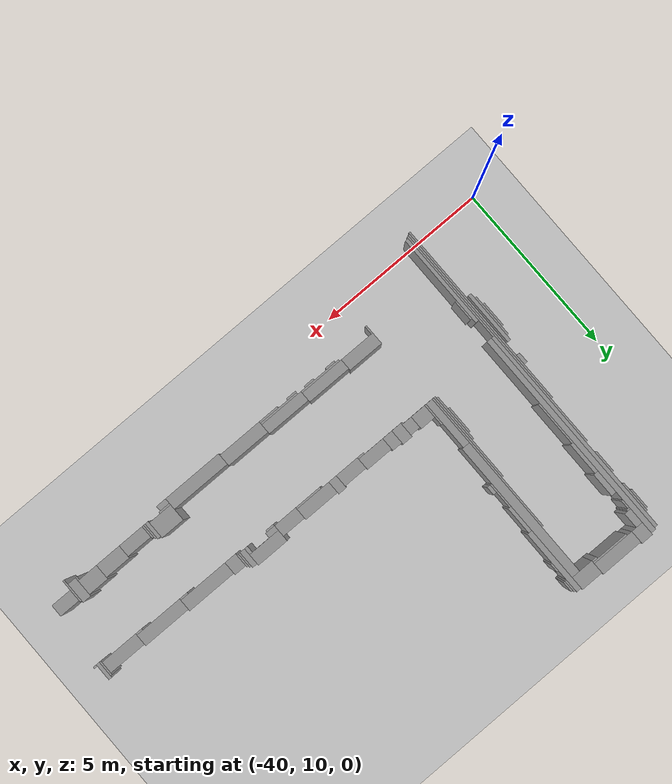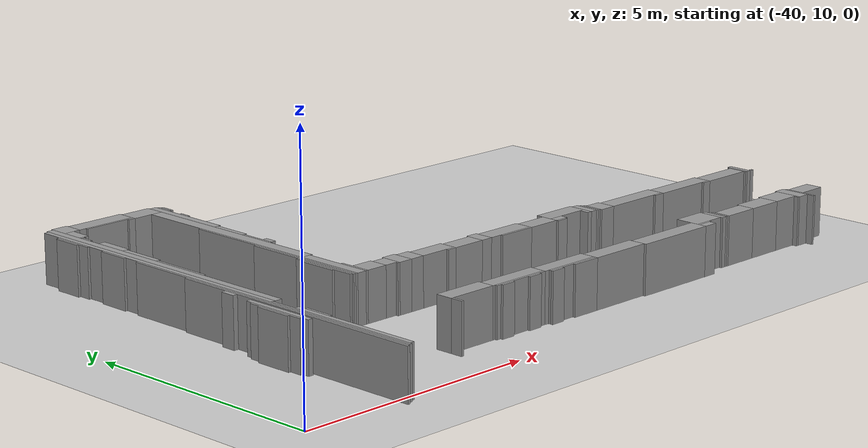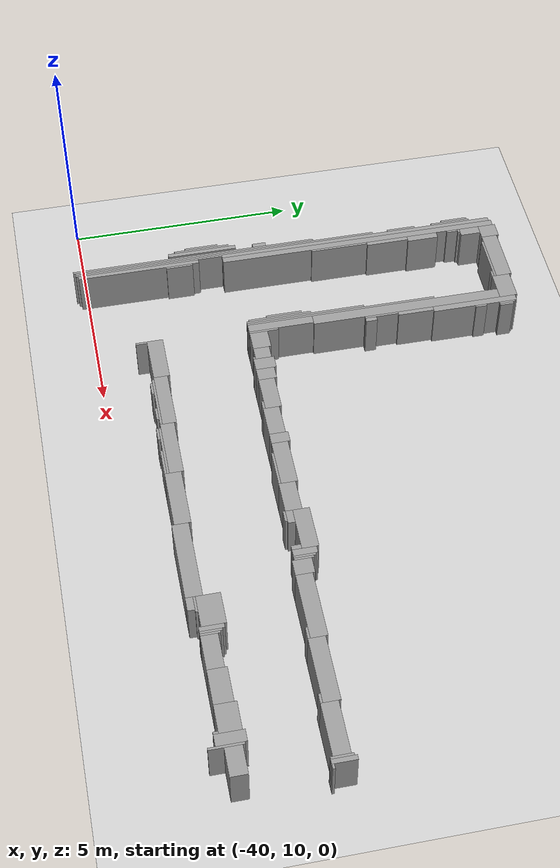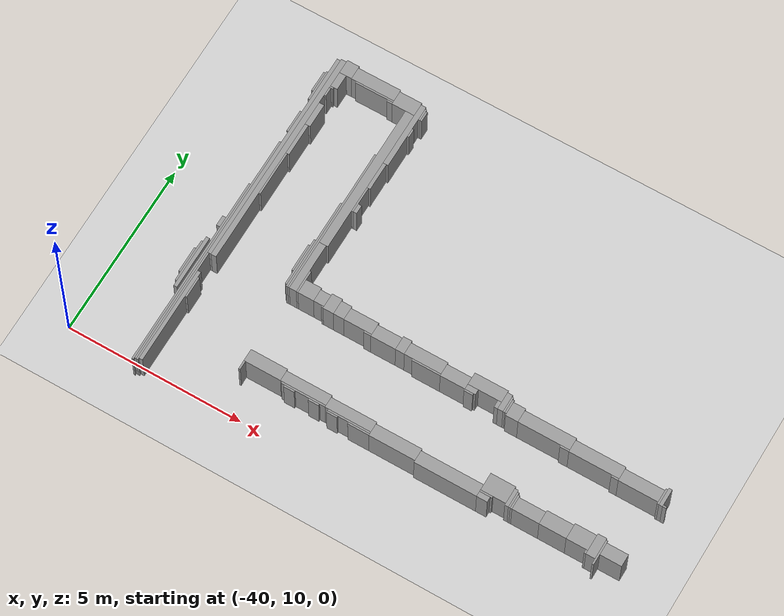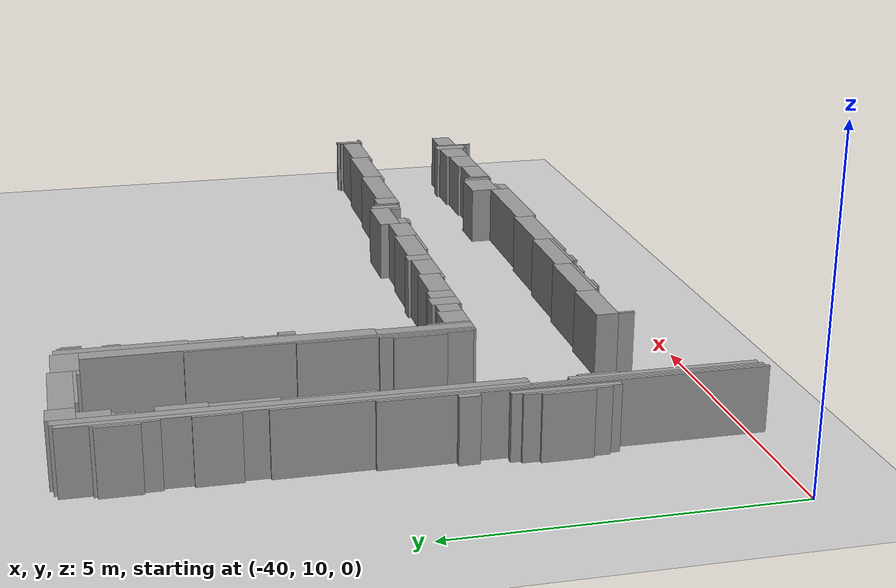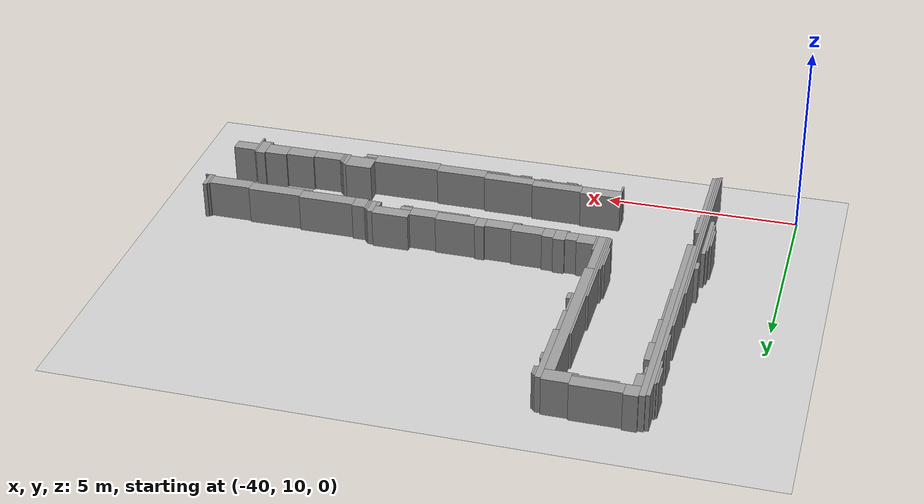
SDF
<sdf version="1.6">
 <world name="default">
  <include><uri>model://ground_plane</uri></include>
  <include><uri>model://sun</uri></include>
  <model name="wall_0">
   <static>1</static>
   <pose>-37.425 19.350000000000005 0.5 0 0 0</pose>
   <link name="link">
    <collision name="collision">
     <geometry><box><size>0.35000000000000003 0.4 1.0</size></box></geometry>
    </collision>
    <visual name="visual">
     <geometry><box><size>0.35000000000000003 0.4 1.0</size></box></geometry>
     <material>
      <script><uri>file://media/materials/scripts/gazebo.material</uri><name>Gazebo/Grey</name></script>
     </material>
    </visual>
   </link>
  </model>
  <model name="wall_1">
   <static>1</static>
   <pose>-37.675 16.325000000000006 0.5 0 0 0</pose>
   <link name="link">
    <collision name="collision">
     <geometry><box><size>0.15000000000000002 6.3500000000000005 1.0</size></box></geometry>
    </collision>
    <visual name="visual">
     <geometry><box><size>0.15000000000000002 6.3500000000000005 1.0</size></box></geometry>
     <material>
      <script><uri>file://media/materials/scripts/gazebo.material</uri><name>Gazebo/Grey</name></script>
     </material>
    </visual>
   </link>
  </model>
  <model name="wall_2">
   <static>1</static>
   <pose>-36.625 19.325000000000006 0.5 0 0 0</pose>
   <link name="link">
    <collision name="collision">
     <geometry><box><size>1.25 0.35000000000000003 1.0</size></box></geometry>
    </collision>
    <visual name="visual">
     <geometry><box><size>1.25 0.35000000000000003 1.0</size></box></geometry>
     <material>
      <script><uri>file://media/materials/scripts/gazebo.material</uri><name>Gazebo/Grey</name></script>
     </material>
    </visual>
   </link>
  </model>
  <model name="wall_3">
   <static>1</static>
   <pose>-37.8 16.3 0.5 0 0 0</pose>
   <link name="link">
    <collision name="collision"><geometry><box><size>0.1 6.300000000000001 1.0</size></box></geometry></collision>
    <visual name="visual">
     <geometry><box><size>0.1 6.300000000000001 1.0</size></box></geometry>
     <material>
      <script><uri>file://media/materials/scripts/gazebo.material</uri><name>Gazebo/Grey</name></script>
     </material>
    </visual>
   </link>
  </model>
  <model name="wall_4">
   <static>1</static>
   <pose>-35.675 19.250000000000004 0.5 0 0 0</pose>
   <link name="link">
    <collision name="collision"><geometry><box><size>0.65 0.4 1.0</size></box></geometry></collision>
    <visual name="visual">
     <geometry><box><size>0.65 0.4 1.0</size></box></geometry>
     <material>
      <script><uri>file://media/materials/scripts/gazebo.material</uri><name>Gazebo/Grey</name></script>
     </material>
    </visual>
   </link>
  </model>
  <model name="wall_5">
   <static>1</static>
   <pose>-35.275 18.450000000000006 0.5 0 0 0</pose>
   <link name="link">
    <collision name="collision">
     <geometry><box><size>0.15000000000000002 1.9000000000000001 1.0</size></box></geometry>
    </collision>
    <visual name="visual">
     <geometry><box><size>0.15000000000000002 1.9000000000000001 1.0</size></box></geometry>
     <material>
      <script><uri>file://media/materials/scripts/gazebo.material</uri><name>Gazebo/Grey</name></script>
     </material>
    </visual>
   </link>
  </model>
  <model name="wall_6">
   <static>1</static>
   <pose>-35.175 19.175 0.5 0 0 0</pose>
   <link name="link">
    <collision name="collision">
     <geometry><box><size>0.05 0.35000000000000003 1.0</size></box></geometry>
    </collision>
    <visual name="visual">
     <geometry><box><size>0.05 0.35000000000000003 1.0</size></box></geometry>
     <material>
      <script><uri>file://media/materials/scripts/gazebo.material</uri><name>Gazebo/Grey</name></script>
     </material>
    </visual>
   </link>
  </model>
  <model name="wall_7">
   <static>1</static>
   <pose>-35.125 19.150000000000002 0.5 0 0 0</pose>
   <link name="link">
    <collision name="collision">
     <geometry><box><size>0.05 0.30000000000000004 1.0</size></box></geometry>
    </collision>
    <visual name="visual">
     <geometry><box><size>0.05 0.30000000000000004 1.0</size></box></geometry>
     <material>
      <script><uri>file://media/materials/scripts/gazebo.material</uri><name>Gazebo/Grey</name></script>
     </material>
    </visual>
   </link>
  </model>
  <model name="wall_8">
   <static>1</static>
   <pose>-37.5 18.925 0.5 0 0 0</pose>
   <link name="link">
    <collision name="collision"><geometry><box><size>0.2 0.45 1.0</size></box></geometry></collision>
    <visual name="visual">
     <geometry><box><size>0.2 0.45 1.0</size></box></geometry>
     <material>
      <script><uri>file://media/materials/scripts/gazebo.material</uri><name>Gazebo/Grey</name></script>
     </material>
    </visual>
   </link>
  </model>
  <model name="wall_9">
   <static>1</static>
   <pose>-36.55 19.125000000000004 0.5 0 0 0</pose>
   <link name="link">
    <collision name="collision"><geometry><box><size>1.1 0.05 1.0</size></box></geometry></collision>
    <visual name="visual">
     <geometry><box><size>1.1 0.05 1.0</size></box></geometry>
     <material>
      <script><uri>file://media/materials/scripts/gazebo.material</uri><name>Gazebo/Grey</name></script>
     </material>
    </visual>
   </link>
  </model>
  <model name="wall_10">
   <static>1</static>
   <pose>-36.074999999999996 19.075000000000006 0.5 0 0 0</pose>
   <link name="link">
    <collision name="collision">
     <geometry><box><size>0.15000000000000002 0.05 1.0</size></box></geometry>
    </collision>
    <visual name="visual">
     <geometry><box><size>0.15000000000000002 0.05 1.0</size></box></geometry>
     <material>
      <script><uri>file://media/materials/scripts/gazebo.material</uri><name>Gazebo/Grey</name></script>
     </material>
    </visual>
   </link>
  </model>
  <model name="wall_11">
   <static>1</static>
   <pose>-35.474999999999994 16.925 0.5 0 0 0</pose>
   <link name="link">
    <collision name="collision"><geometry><box><size>0.25 4.25 1.0</size></box></geometry></collision>
    <visual name="visual">
     <geometry><box><size>0.25 4.25 1.0</size></box></geometry>
     <material>
      <script><uri>file://media/materials/scripts/gazebo.material</uri><name>Gazebo/Grey</name></script>
     </material>
    </visual>
   </link>
  </model>
  <model name="wall_12">
   <static>1</static>
   <pose>-37.875 18.55 0.5 0 0 0</pose>
   <link name="link">
    <collision name="collision"><geometry><box><size>0.05 0.9 1.0</size></box></geometry></collision>
    <visual name="visual">
     <geometry><box><size>0.05 0.9 1.0</size></box></geometry>
     <material>
      <script><uri>file://media/materials/scripts/gazebo.material</uri><name>Gazebo/Grey</name></script>
     </material>
    </visual>
   </link>
  </model>
  <model name="wall_13">
   <static>1</static>
   <pose>-37.925 18.650000000000002 0.5 0 0 0</pose>
   <link name="link">
    <collision name="collision">
     <geometry><box><size>0.05 0.6000000000000001 1.0</size></box></geometry>
    </collision>
    <visual name="visual">
     <geometry><box><size>0.05 0.6000000000000001 1.0</size></box></geometry>
     <material>
      <script><uri>file://media/materials/scripts/gazebo.material</uri><name>Gazebo/Grey</name></script>
     </material>
    </visual>
   </link>
  </model>
  <model name="wall_17">
   <static>1</static>
   <pose>-37.55 18.675 0.5 0 0 0</pose>
   <link name="link">
    <collision name="collision"><geometry><box><size>0.1 0.05 1.0</size></box></geometry></collision>
    <visual name="visual">
     <geometry><box><size>0.1 0.05 1.0</size></box></geometry>
     <material>
      <script><uri>file://media/materials/scripts/gazebo.material</uri><name>Gazebo/Grey</name></script>
     </material>
    </visual>
   </link>
  </model>
  <model name="wall_18">
   <static>1</static>
   <pose>-35.175 18.575000000000006 0.5 0 0 0</pose>
   <link name="link">
    <collision name="collision"><geometry><box><size>0.05 0.25 1.0</size></box></geometry></collision>
    <visual name="visual">
     <geometry><box><size>0.05 0.25 1.0</size></box></geometry>
     <material>
      <script><uri>file://media/materials/scripts/gazebo.material</uri><name>Gazebo/Grey</name></script>
     </material>
    </visual>
   </link>
  </model>
  <model name="wall_21">
   <static>1</static>
   <pose>-37.574999999999996 18.525000000000002 0.5 0 0 0</pose>
   <link name="link">
    <collision name="collision"><geometry><box><size>0.05 0.25 1.0</size></box></geometry></collision>
    <visual name="visual">
     <geometry><box><size>0.05 0.25 1.0</size></box></geometry>
     <material>
      <script><uri>file://media/materials/scripts/gazebo.material</uri><name>Gazebo/Grey</name></script>
     </material>
    </visual>
   </link>
  </model>
  <model name="wall_29">
   <static>1</static>
   <pose>-37.525 17.8 0.5 0 0 0</pose>
   <link name="link">
    <collision name="collision">
     <geometry><box><size>0.15000000000000002 0.7000000000000001 1.0</size></box></geometry>
    </collision>
    <visual name="visual">
     <geometry><box><size>0.15000000000000002 0.7000000000000001 1.0</size></box></geometry>
     <material>
      <script><uri>file://media/materials/scripts/gazebo.material</uri><name>Gazebo/Grey</name></script>
     </material>
    </visual>
   </link>
  </model>
  <model name="wall_33">
   <static>1</static>
   <pose>-37.875 17.375000000000004 0.5 0 0 0</pose>
   <link name="link">
    <collision name="collision"><geometry><box><size>0.05 0.65 1.0</size></box></geometry></collision>
    <visual name="visual">
     <geometry><box><size>0.05 0.65 1.0</size></box></geometry>
     <material>
      <script><uri>file://media/materials/scripts/gazebo.material</uri><name>Gazebo/Grey</name></script>
     </material>
    </visual>
   </link>
  </model>
  <model name="wall_34">
   <static>1</static>
   <pose>-35.625 15.475000000000005 0.5 0 0 0</pose>
   <link name="link">
    <collision name="collision"><geometry><box><size>0.05 4.25 1.0</size></box></geometry></collision>
    <visual name="visual">
     <geometry><box><size>0.05 4.25 1.0</size></box></geometry>
     <material>
      <script><uri>file://media/materials/scripts/gazebo.material</uri><name>Gazebo/Grey</name></script>
     </material>
    </visual>
   </link>
  </model>
  <model name="wall_35">
   <static>1</static>
   <pose>-35.3 17.100000000000005 0.5 0 0 0</pose>
   <link name="link">
    <collision name="collision"><geometry><box><size>0.1 0.8 1.0</size></box></geometry></collision>
    <visual name="visual">
     <geometry><box><size>0.1 0.8 1.0</size></box></geometry>
     <material>
      <script><uri>file://media/materials/scripts/gazebo.material</uri><name>Gazebo/Grey</name></script>
     </material>
    </visual>
   </link>
  </model>
  <model name="wall_36">
   <static>1</static>
   <pose>-37.55 16.975000000000005 0.5 0 0 0</pose>
   <link name="link">
    <collision name="collision">
     <geometry><box><size>0.1 0.9500000000000001 1.0</size></box></geometry>
    </collision>
    <visual name="visual">
     <geometry><box><size>0.1 0.9500000000000001 1.0</size></box></geometry>
     <material>
      <script><uri>file://media/materials/scripts/gazebo.material</uri><name>Gazebo/Grey</name></script>
     </material>
    </visual>
   </link>
  </model>
  <model name="wall_40">
   <static>1</static>
   <pose>-37.875 13.250000000000004 0.5 0 0 0</pose>
   <link name="link">
    <collision name="collision"><geometry><box><size>0.05 6.9 1.0</size></box></geometry></collision>
    <visual name="visual">
     <geometry><box><size>0.05 6.9 1.0</size></box></geometry>
     <material>
      <script><uri>file://media/materials/scripts/gazebo.material</uri><name>Gazebo/Grey</name></script>
     </material>
    </visual>
   </link>
  </model>
  <model name="wall_41">
   <static>1</static>
   <pose>-35.324999999999996 16.325000000000006 0.5 0 0 0</pose>
   <link name="link">
    <collision name="collision"><geometry><box><size>0.05 0.75 1.0</size></box></geometry></collision>
    <visual name="visual">
     <geometry><box><size>0.05 0.75 1.0</size></box></geometry>
     <material>
      <script><uri>file://media/materials/scripts/gazebo.material</uri><name>Gazebo/Grey</name></script>
     </material>
    </visual>
   </link>
  </model>
  <model name="wall_42">
   <static>1</static>
   <pose>-37.574999999999996 15.850000000000005 0.5 0 0 0</pose>
   <link name="link">
    <collision name="collision"><geometry><box><size>0.05 1.3 1.0</size></box></geometry></collision>
    <visual name="visual">
     <geometry><box><size>0.05 1.3 1.0</size></box></geometry>
     <material>
      <script><uri>file://media/materials/scripts/gazebo.material</uri><name>Gazebo/Grey</name></script>
     </material>
    </visual>
   </link>
  </model>
  <model name="wall_44">
   <static>1</static>
   <pose>-35.25 16.075000000000006 0.5 0 0 0</pose>
   <link name="link">
    <collision name="collision"><geometry><box><size>0.1 0.25 1.0</size></box></geometry></collision>
    <visual name="visual">
     <geometry><box><size>0.1 0.25 1.0</size></box></geometry>
     <material>
      <script><uri>file://media/materials/scripts/gazebo.material</uri><name>Gazebo/Grey</name></script>
     </material>
    </visual>
   </link>
  </model>
  <model name="wall_46">
   <static>1</static>
   <pose>-35.675 14.675 0.5 0 0 0</pose>
   <link name="link">
    <collision name="collision">
     <geometry><box><size>0.05 2.6500000000000004 1.0</size></box></geometry>
    </collision>
    <visual name="visual">
     <geometry><box><size>0.05 2.6500000000000004 1.0</size></box></geometry>
     <material>
      <script><uri>file://media/materials/scripts/gazebo.material</uri><name>Gazebo/Grey</name></script>
     </material>
    </visual>
   </link>
  </model>
  <model name="wall_50">
   <static>1</static>
   <pose>-37.925 12.525000000000002 0.5 0 0 0</pose>
   <link name="link">
    <collision name="collision">
     <geometry><box><size>0.05 5.550000000000001 1.0</size></box></geometry>
    </collision>
    <visual name="visual">
     <geometry><box><size>0.05 5.550000000000001 1.0</size></box></geometry>
     <material>
      <script><uri>file://media/materials/scripts/gazebo.material</uri><name>Gazebo/Grey</name></script>
     </material>
    </visual>
   </link>
  </model>
  <model name="wall_51">
   <static>1</static>
   <pose>-35.724999999999994 14.100000000000005 0.5 0 0 0</pose>
   <link name="link">
    <collision name="collision">
     <geometry><box><size>0.05 1.4000000000000001 1.0</size></box></geometry>
    </collision>
    <visual name="visual">
     <geometry><box><size>0.05 1.4000000000000001 1.0</size></box></geometry>
     <material>
      <script><uri>file://media/materials/scripts/gazebo.material</uri><name>Gazebo/Grey</name></script>
     </material>
    </visual>
   </link>
  </model>
  <model name="wall_52">
   <static>1</static>
   <pose>-35.5 14.075000000000006 0.5 0 0 0</pose>
   <link name="link">
    <collision name="collision">
     <geometry><box><size>0.2 1.4500000000000002 1.0</size></box></geometry>
    </collision>
    <visual name="visual">
     <geometry><box><size>0.2 1.4500000000000002 1.0</size></box></geometry>
     <material>
      <script><uri>file://media/materials/scripts/gazebo.material</uri><name>Gazebo/Grey</name></script>
     </material>
    </visual>
   </link>
  </model>
  <model name="wall_54">
   <static>1</static>
   <pose>-35.775 14.200000000000006 0.5 0 0 0</pose>
   <link name="link">
    <collision name="collision"><geometry><box><size>0.05 0.8 1.0</size></box></geometry></collision>
    <visual name="visual">
     <geometry><box><size>0.05 0.8 1.0</size></box></geometry>
     <material>
      <script><uri>file://media/materials/scripts/gazebo.material</uri><name>Gazebo/Grey</name></script>
     </material>
    </visual>
   </link>
  </model>
  <model name="wall_56">
   <static>1</static>
   <pose>-38.0 14.05 0.5 0 0 0</pose>
   <link name="link">
    <collision name="collision">
     <geometry><box><size>0.1 0.30000000000000004 1.0</size></box></geometry>
    </collision>
    <visual name="visual">
     <geometry><box><size>0.1 0.30000000000000004 1.0</size></box></geometry>
     <material>
      <script><uri>file://media/materials/scripts/gazebo.material</uri><name>Gazebo/Grey</name></script>
     </material>
    </visual>
   </link>
  </model>
  <model name="wall_57">
   <static>1</static>
   <pose>-35.375 13.675 0.5 0 0 0</pose>
   <link name="link">
    <collision name="collision"><geometry><box><size>0.05 0.65 1.0</size></box></geometry></collision>
    <visual name="visual">
     <geometry><box><size>0.05 0.65 1.0</size></box></geometry>
     <material>
      <script><uri>file://media/materials/scripts/gazebo.material</uri><name>Gazebo/Grey</name></script>
     </material>
    </visual>
   </link>
  </model>
  <model name="wall_61">
   <static>1</static>
   <pose>-35.125 13.55 0.5 0 0 0</pose>
   <link name="link">
    <collision name="collision"><geometry><box><size>0.45 0.4 1.0</size></box></geometry></collision>
    <visual name="visual">
     <geometry><box><size>0.45 0.4 1.0</size></box></geometry>
     <material>
      <script><uri>file://media/materials/scripts/gazebo.material</uri><name>Gazebo/Grey</name></script>
     </material>
    </visual>
   </link>
  </model>
  <model name="wall_62">
   <static>1</static>
   <pose>-34.449999999999996 13.525000000000002 0.5 0 0 0</pose>
   <link name="link">
    <collision name="collision">
     <geometry><box><size>0.30000000000000004 0.45 1.0</size></box></geometry>
    </collision>
    <visual name="visual">
     <geometry><box><size>0.30000000000000004 0.45 1.0</size></box></geometry>
     <material>
      <script><uri>file://media/materials/scripts/gazebo.material</uri><name>Gazebo/Grey</name></script>
     </material>
    </visual>
   </link>
  </model>
  <model name="wall_63">
   <static>1</static>
   <pose>-34.75 13.525000000000002 0.5 0 0 0</pose>
   <link name="link">
    <collision name="collision">
     <geometry><box><size>0.30000000000000004 0.35000000000000003 1.0</size></box></geometry>
    </collision>
    <visual name="visual">
     <geometry><box><size>0.30000000000000004 0.35000000000000003 1.0</size></box></geometry>
     <material>
      <script><uri>file://media/materials/scripts/gazebo.material</uri><name>Gazebo/Grey</name></script>
     </material>
    </visual>
   </link>
  </model>
  <model name="wall_64">
   <static>1</static>
   <pose>-34.15 13.500000000000004 0.5 0 0 0</pose>
   <link name="link">
    <collision name="collision">
     <geometry><box><size>0.30000000000000004 0.4 1.0</size></box></geometry>
    </collision>
    <visual name="visual">
     <geometry><box><size>0.30000000000000004 0.4 1.0</size></box></geometry>
     <material>
      <script><uri>file://media/materials/scripts/gazebo.material</uri><name>Gazebo/Grey</name></script>
     </material>
    </visual>
   </link>
  </model>
  <model name="wall_65">
   <static>1</static>
   <pose>-30.025 13.525000000000002 0.5 0 0 0</pose>
   <link name="link">
    <collision name="collision">
     <geometry><box><size>0.9500000000000001 0.35000000000000003 1.0</size></box></geometry>
    </collision>
    <visual name="visual">
     <geometry><box><size>0.9500000000000001 0.35000000000000003 1.0</size></box></geometry>
     <material>
      <script><uri>file://media/materials/scripts/gazebo.material</uri><name>Gazebo/Grey</name></script>
     </material>
    </visual>
   </link>
  </model>
  <model name="wall_66">
   <static>1</static>
   <pose>-33.599999999999994 13.475000000000005 0.5 0 0 0</pose>
   <link name="link">
    <collision name="collision">
     <geometry><box><size>0.8 0.35000000000000003 1.0</size></box></geometry>
    </collision>
    <visual name="visual">
     <geometry><box><size>0.8 0.35000000000000003 1.0</size></box></geometry>
     <material>
      <script><uri>file://media/materials/scripts/gazebo.material</uri><name>Gazebo/Grey</name></script>
     </material>
    </visual>
   </link>
  </model>
  <model name="wall_67">
   <static>1</static>
   <pose>-32.375 13.450000000000006 0.5 0 0 0</pose>
   <link name="link">
    <collision name="collision"><geometry><box><size>0.25 0.4 1.0</size></box></geometry></collision>
    <visual name="visual">
     <geometry><box><size>0.25 0.4 1.0</size></box></geometry>
     <material>
      <script><uri>file://media/materials/scripts/gazebo.material</uri><name>Gazebo/Grey</name></script>
     </material>
    </visual>
   </link>
  </model>
  <model name="wall_68">
   <static>1</static>
   <pose>-29.474999999999998 13.400000000000002 0.5 0 0 0</pose>
   <link name="link">
    <collision name="collision">
     <geometry><box><size>0.15000000000000002 0.5 1.0</size></box></geometry>
    </collision>
    <visual name="visual">
     <geometry><box><size>0.15000000000000002 0.5 1.0</size></box></geometry>
     <material>
      <script><uri>file://media/materials/scripts/gazebo.material</uri><name>Gazebo/Grey</name></script>
     </material>
    </visual>
   </link>
  </model>
  <model name="wall_69">
   <static>1</static>
   <pose>-32.849999999999994 13.425 0.5 0 0 0</pose>
   <link name="link">
    <collision name="collision">
     <geometry><box><size>0.7000000000000001 0.35000000000000003 1.0</size></box></geometry>
    </collision>
    <visual name="visual">
     <geometry><box><size>0.7000000000000001 0.35000000000000003 1.0</size></box></geometry>
     <material>
      <script><uri>file://media/materials/scripts/gazebo.material</uri><name>Gazebo/Grey</name></script>
     </material>
    </visual>
   </link>
  </model>
  <model name="wall_70">
   <static>1</static>
   <pose>-31.724999999999998 13.425 0.5 0 0 0</pose>
   <link name="link">
    <collision name="collision">
     <geometry><box><size>1.05 0.35000000000000003 1.0</size></box></geometry>
    </collision>
    <visual name="visual">
     <geometry><box><size>1.05 0.35000000000000003 1.0</size></box></geometry>
     <material>
      <script><uri>file://media/materials/scripts/gazebo.material</uri><name>Gazebo/Grey</name></script>
     </material>
    </visual>
   </link>
  </model>
  <model name="wall_71">
   <static>1</static>
   <pose>-29.375 13.375000000000004 0.5 0 0 0</pose>
   <link name="link">
    <collision name="collision"><geometry><box><size>0.05 0.45 1.0</size></box></geometry></collision>
    <visual name="visual">
     <geometry><box><size>0.05 0.45 1.0</size></box></geometry>
     <material>
      <script><uri>file://media/materials/scripts/gazebo.material</uri><name>Gazebo/Grey</name></script>
     </material>
    </visual>
   </link>
  </model>
  <model name="wall_72">
   <static>1</static>
   <pose>-30.849999999999998 13.375000000000004 0.5 0 0 0</pose>
   <link name="link">
    <collision name="collision">
     <geometry><box><size>0.7000000000000001 0.35000000000000003 1.0</size></box></geometry>
    </collision>
    <visual name="visual">
     <geometry><box><size>0.7000000000000001 0.35000000000000003 1.0</size></box></geometry>
     <material>
      <script><uri>file://media/materials/scripts/gazebo.material</uri><name>Gazebo/Grey</name></script>
     </material>
    </visual>
   </link>
  </model>
  <model name="wall_73">
   <static>1</static>
   <pose>-29.324999999999996 13.350000000000005 0.5 0 0 0</pose>
   <link name="link">
    <collision name="collision"><geometry><box><size>0.05 0.4 1.0</size></box></geometry></collision>
    <visual name="visual">
     <geometry><box><size>0.05 0.4 1.0</size></box></geometry>
     <material>
      <script><uri>file://media/materials/scripts/gazebo.material</uri><name>Gazebo/Grey</name></script>
     </material>
    </visual>
   </link>
  </model>
  <model name="wall_74">
   <static>1</static>
   <pose>-38.05 12.725000000000005 0.5 0 0 0</pose>
   <link name="link">
    <collision name="collision"><geometry><box><size>0.1 1.55 1.0</size></box></geometry></collision>
    <visual name="visual">
     <geometry><box><size>0.1 1.55 1.0</size></box></geometry>
     <material>
      <script><uri>file://media/materials/scripts/gazebo.material</uri><name>Gazebo/Grey</name></script>
     </material>
    </visual>
   </link>
  </model>
  <model name="wall_75">
   <static>1</static>
   <pose>-29.125 13.3 0.5 0 0 0</pose>
   <link name="link">
    <collision name="collision">
     <geometry><box><size>0.35000000000000003 0.4 1.0</size></box></geometry>
    </collision>
    <visual name="visual">
     <geometry><box><size>0.35000000000000003 0.4 1.0</size></box></geometry>
     <material>
      <script><uri>file://media/materials/scripts/gazebo.material</uri><name>Gazebo/Grey</name></script>
     </material>
    </visual>
   </link>
  </model>
  <model name="wall_77">
   <static>1</static>
   <pose>-28.224999999999998 13.275000000000002 0.5 0 0 0</pose>
   <link name="link">
    <collision name="collision">
     <geometry><box><size>1.4500000000000002 0.35000000000000003 1.0</size></box></geometry>
    </collision>
    <visual name="visual">
     <geometry><box><size>1.4500000000000002 0.35000000000000003 1.0</size></box></geometry>
     <material>
      <script><uri>file://media/materials/scripts/gazebo.material</uri><name>Gazebo/Grey</name></script>
     </material>
    </visual>
   </link>
  </model>
  <model name="wall_78">
   <static>1</static>
   <pose>-24.9 13.200000000000006 0.5 0 0 0</pose>
   <link name="link">
    <collision name="collision"><geometry><box><size>0.1 0.5 1.0</size></box></geometry></collision>
    <visual name="visual">
     <geometry><box><size>0.1 0.5 1.0</size></box></geometry>
     <material>
      <script><uri>file://media/materials/scripts/gazebo.material</uri><name>Gazebo/Grey</name></script>
     </material>
    </visual>
   </link>
  </model>
  <model name="wall_79">
   <static>1</static>
   <pose>-26.799999999999997 13.225000000000005 0.5 0 0 0</pose>
   <link name="link">
    <collision name="collision">
     <geometry><box><size>1.4000000000000001 0.35000000000000003 1.0</size></box></geometry>
    </collision>
    <visual name="visual">
     <geometry><box><size>1.4000000000000001 0.35000000000000003 1.0</size></box></geometry>
     <material>
      <script><uri>file://media/materials/scripts/gazebo.material</uri><name>Gazebo/Grey</name></script>
     </material>
    </visual>
   </link>
  </model>
  <model name="wall_80">
   <static>1</static>
   <pose>-24.974999999999998 13.175 0.5 0 0 0</pose>
   <link name="link">
    <collision name="collision"><geometry><box><size>0.05 0.45 1.0</size></box></geometry></collision>
    <visual name="visual">
     <geometry><box><size>0.05 0.45 1.0</size></box></geometry>
     <material>
      <script><uri>file://media/materials/scripts/gazebo.material</uri><name>Gazebo/Grey</name></script>
     </material>
    </visual>
   </link>
  </model>
  <model name="wall_82">
   <static>1</static>
   <pose>-38.125 12.725000000000005 0.5 0 0 0</pose>
   <link name="link">
    <collision name="collision"><geometry><box><size>0.05 1.25 1.0</size></box></geometry></collision>
    <visual name="visual">
     <geometry><box><size>0.05 1.25 1.0</size></box></geometry>
     <material>
      <script><uri>file://media/materials/scripts/gazebo.material</uri><name>Gazebo/Grey</name></script>
     </material>
    </visual>
   </link>
  </model>
  <model name="wall_83">
   <static>1</static>
   <pose>-34.625 13.325000000000006 0.5 0 0 0</pose>
   <link name="link">
    <collision name="collision"><geometry><box><size>0.05 0.05 1.0</size></box></geometry></collision>
    <visual name="visual">
     <geometry><box><size>0.05 0.05 1.0</size></box></geometry>
     <material>
      <script><uri>file://media/materials/scripts/gazebo.material</uri><name>Gazebo/Grey</name></script>
     </material>
    </visual>
   </link>
  </model>
  <model name="wall_84">
   <static>1</static>
   <pose>-30.349999999999998 13.275000000000002 0.5 0 0 0</pose>
   <link name="link">
    <collision name="collision">
     <geometry><box><size>0.30000000000000004 0.15000000000000002 1.0</size></box></geometry>
    </collision>
    <visual name="visual">
     <geometry><box><size>0.30000000000000004 0.15000000000000002 1.0</size></box></geometry>
     <material>
      <script><uri>file://media/materials/scripts/gazebo.material</uri><name>Gazebo/Grey</name></script>
     </material>
    </visual>
   </link>
  </model>
  <model name="wall_85">
   <static>1</static>
   <pose>-29.599999999999998 13.250000000000004 0.5 0 0 0</pose>
   <link name="link">
    <collision name="collision"><geometry><box><size>0.1 0.2 1.0</size></box></geometry></collision>
    <visual name="visual">
     <geometry><box><size>0.1 0.2 1.0</size></box></geometry>
     <material>
      <script><uri>file://media/materials/scripts/gazebo.material</uri><name>Gazebo/Grey</name></script>
     </material>
    </visual>
   </link>
  </model>
  <model name="wall_86">
   <static>1</static>
   <pose>-25.549999999999997 13.175 0.5 0 0 0</pose>
   <link name="link">
    <collision name="collision">
     <geometry><box><size>1.1 0.35000000000000003 1.0</size></box></geometry>
    </collision>
    <visual name="visual">
     <geometry><box><size>1.1 0.35000000000000003 1.0</size></box></geometry>
     <material>
      <script><uri>file://media/materials/scripts/gazebo.material</uri><name>Gazebo/Grey</name></script>
     </material>
    </visual>
   </link>
  </model>
  <model name="wall_89">
   <static>1</static>
   <pose>-33.3 13.275000000000002 0.5 0 0 0</pose>
   <link name="link">
    <collision name="collision"><geometry><box><size>0.2 0.05 1.0</size></box></geometry></collision>
    <visual name="visual">
     <geometry><box><size>0.2 0.05 1.0</size></box></geometry>
     <material>
      <script><uri>file://media/materials/scripts/gazebo.material</uri><name>Gazebo/Grey</name></script>
     </material>
    </visual>
   </link>
  </model>
  <model name="wall_92">
   <static>1</static>
   <pose>-31.599999999999998 13.225000000000005 0.5 0 0 0</pose>
   <link name="link">
    <collision name="collision"><geometry><box><size>0.8 0.05 1.0</size></box></geometry></collision>
    <visual name="visual">
     <geometry><box><size>0.8 0.05 1.0</size></box></geometry>
     <material>
      <script><uri>file://media/materials/scripts/gazebo.material</uri><name>Gazebo/Grey</name></script>
     </material>
    </visual>
   </link>
  </model>
  <model name="wall_97">
   <static>1</static>
   <pose>-30.375 13.175 0.5 0 0 0</pose>
   <link name="link">
    <collision name="collision"><geometry><box><size>0.25 0.05 1.0</size></box></geometry></collision>
    <visual name="visual">
     <geometry><box><size>0.25 0.05 1.0</size></box></geometry>
     <material>
      <script><uri>file://media/materials/scripts/gazebo.material</uri><name>Gazebo/Grey</name></script>
     </material>
    </visual>
   </link>
  </model>
  <model name="wall_102">
   <static>1</static>
   <pose>-37.824999999999996 11.475000000000005 0.5 0 0 0</pose>
   <link name="link">
    <collision name="collision"><geometry><box><size>0.05 3.35 1.0</size></box></geometry></collision>
    <visual name="visual">
     <geometry><box><size>0.05 3.35 1.0</size></box></geometry>
     <material>
      <script><uri>file://media/materials/scripts/gazebo.material</uri><name>Gazebo/Grey</name></script>
     </material>
    </visual>
   </link>
  </model>
  <model name="wall_108">
   <static>1</static>
   <pose>-38.175 12.725000000000005 0.5 0 0 0</pose>
   <link name="link">
    <collision name="collision"><geometry><box><size>0.05 0.75 1.0</size></box></geometry></collision>
    <visual name="visual">
     <geometry><box><size>0.05 0.75 1.0</size></box></geometry>
     <material>
      <script><uri>file://media/materials/scripts/gazebo.material</uri><name>Gazebo/Grey</name></script>
     </material>
    </visual>
   </link>
  </model>
  <model name="wall_109">
   <static>1</static>
   <pose>-27.624999999999996 13.075000000000006 0.5 0 0 0</pose>
   <link name="link">
    <collision name="collision"><geometry><box><size>0.25 0.05 1.0</size></box></geometry></collision>
    <visual name="visual">
     <geometry><box><size>0.25 0.05 1.0</size></box></geometry>
     <material>
      <script><uri>file://media/materials/scripts/gazebo.material</uri><name>Gazebo/Grey</name></script>
     </material>
    </visual>
   </link>
  </model>
  <model name="wall_116">
   <static>1</static>
   <pose>-26.2 13.025000000000002 0.5 0 0 0</pose>
   <link name="link">
    <collision name="collision"><geometry><box><size>0.2 0.05 1.0</size></box></geometry></collision>
    <visual name="visual">
     <geometry><box><size>0.2 0.05 1.0</size></box></geometry>
     <material>
      <script><uri>file://media/materials/scripts/gazebo.material</uri><name>Gazebo/Grey</name></script>
     </material>
    </visual>
   </link>
  </model>
  <model name="wall_122">
   <static>1</static>
   <pose>-24.799999999999997 12.975000000000005 0.5 0 0 0</pose>
   <link name="link">
    <collision name="collision"><geometry><box><size>0.1 0.05 1.0</size></box></geometry></collision>
    <visual name="visual">
     <geometry><box><size>0.1 0.05 1.0</size></box></geometry>
     <material>
      <script><uri>file://media/materials/scripts/gazebo.material</uri><name>Gazebo/Grey</name></script>
     </material>
    </visual>
   </link>
  </model>
  <model name="wall_146">
   <static>1</static>
   <pose>-37.75 11.225000000000005 0.5 0 0 0</pose>
   <link name="link">
    <collision name="collision"><geometry><box><size>0.1 2.75 1.0</size></box></geometry></collision>
    <visual name="visual">
     <geometry><box><size>0.1 2.75 1.0</size></box></geometry>
     <material>
      <script><uri>file://media/materials/scripts/gazebo.material</uri><name>Gazebo/Grey</name></script>
     </material>
    </visual>
   </link>
  </model>
  <model name="wall_148">
   <static>1</static>
   <pose>-37.675 12.150000000000002 0.5 0 0 0</pose>
   <link name="link">
    <collision name="collision">
     <geometry><box><size>0.05 0.6000000000000001 1.0</size></box></geometry>
    </collision>
    <visual name="visual">
     <geometry><box><size>0.05 0.6000000000000001 1.0</size></box></geometry>
     <material>
      <script><uri>file://media/materials/scripts/gazebo.material</uri><name>Gazebo/Grey</name></script>
     </material>
    </visual>
   </link>
  </model>
  <model name="wall_152">
   <static>1</static>
   <pose>-28.5 11.350000000000005 0.5 0 0 0</pose>
   <link name="link">
    <collision name="collision">
     <geometry><box><size>0.7000000000000001 0.5 1.0</size></box></geometry>
    </collision>
    <visual name="visual">
     <geometry><box><size>0.7000000000000001 0.5 1.0</size></box></geometry>
     <material>
      <script><uri>file://media/materials/scripts/gazebo.material</uri><name>Gazebo/Grey</name></script>
     </material>
    </visual>
   </link>
  </model>
  <model name="wall_153">
   <static>1</static>
   <pose>-28.099999999999998 11.3 0.5 0 0 0</pose>
   <link name="link">
    <collision name="collision"><geometry><box><size>0.1 0.5 1.0</size></box></geometry></collision>
    <visual name="visual">
     <geometry><box><size>0.1 0.5 1.0</size></box></geometry>
     <material>
      <script><uri>file://media/materials/scripts/gazebo.material</uri><name>Gazebo/Grey</name></script>
     </material>
    </visual>
   </link>
  </model>
  <model name="wall_154">
   <static>1</static>
   <pose>-25.724999999999998 11.250000000000004 0.5 0 0 0</pose>
   <link name="link">
    <collision name="collision">
     <geometry><box><size>0.25 0.6000000000000001 1.0</size></box></geometry>
    </collision>
    <visual name="visual">
     <geometry><box><size>0.25 0.6000000000000001 1.0</size></box></geometry>
     <material>
      <script><uri>file://media/materials/scripts/gazebo.material</uri><name>Gazebo/Grey</name></script>
     </material>
    </visual>
   </link>
  </model>
  <model name="wall_156">
   <static>1</static>
   <pose>-28.025 11.275000000000002 0.5 0 0 0</pose>
   <link name="link">
    <collision name="collision"><geometry><box><size>0.05 0.45 1.0</size></box></geometry></collision>
    <visual name="visual">
     <geometry><box><size>0.05 0.45 1.0</size></box></geometry>
     <material>
      <script><uri>file://media/materials/scripts/gazebo.material</uri><name>Gazebo/Grey</name></script>
     </material>
    </visual>
   </link>
  </model>
  <model name="wall_157">
   <static>1</static>
   <pose>-26.15 11.275000000000002 0.5 0 0 0</pose>
   <link name="link">
    <collision name="collision">
     <geometry><box><size>0.6000000000000001 0.45 1.0</size></box></geometry>
    </collision>
    <visual name="visual">
     <geometry><box><size>0.6000000000000001 0.45 1.0</size></box></geometry>
     <material>
      <script><uri>file://media/materials/scripts/gazebo.material</uri><name>Gazebo/Grey</name></script>
     </material>
    </visual>
   </link>
  </model>
  <model name="wall_158">
   <static>1</static>
   <pose>-25.575 11.150000000000002 0.5 0 0 0</pose>
   <link name="link">
    <collision name="collision">
     <geometry><box><size>0.05 0.7000000000000001 1.0</size></box></geometry>
    </collision>
    <visual name="visual">
     <geometry><box><size>0.05 0.7000000000000001 1.0</size></box></geometry>
     <material>
      <script><uri>file://media/materials/scripts/gazebo.material</uri><name>Gazebo/Grey</name></script>
     </material>
    </visual>
   </link>
  </model>
  <model name="wall_160">
   <static>1</static>
   <pose>-35.025 11.275000000000002 0.5 0 0 0</pose>
   <link name="link">
    <collision name="collision">
     <geometry><box><size>1.05 0.35000000000000003 1.0</size></box></geometry>
    </collision>
    <visual name="visual">
     <geometry><box><size>1.05 0.35000000000000003 1.0</size></box></geometry>
     <material>
      <script><uri>file://media/materials/scripts/gazebo.material</uri><name>Gazebo/Grey</name></script>
     </material>
    </visual>
   </link>
  </model>
  <model name="wall_161">
   <static>1</static>
   <pose>-27.974999999999998 11.250000000000004 0.5 0 0 0</pose>
   <link name="link">
    <collision name="collision"><geometry><box><size>0.05 0.4 1.0</size></box></geometry></collision>
    <visual name="visual">
     <geometry><box><size>0.05 0.4 1.0</size></box></geometry>
     <material>
      <script><uri>file://media/materials/scripts/gazebo.material</uri><name>Gazebo/Grey</name></script>
     </material>
    </visual>
   </link>
  </model>
  <model name="wall_162">
   <static>1</static>
   <pose>-26.825 11.250000000000004 0.5 0 0 0</pose>
   <link name="link">
    <collision name="collision"><geometry><box><size>0.75 0.4 1.0</size></box></geometry></collision>
    <visual name="visual">
     <geometry><box><size>0.75 0.4 1.0</size></box></geometry>
     <material>
      <script><uri>file://media/materials/scripts/gazebo.material</uri><name>Gazebo/Grey</name></script>
     </material>
    </visual>
   </link>
  </model>
  <model name="wall_163">
   <static>1</static>
   <pose>-25.249999999999996 11.275000000000002 0.5 0 0 0</pose>
   <link name="link">
    <collision name="collision">
     <geometry><box><size>0.6000000000000001 0.35000000000000003 1.0</size></box></geometry>
    </collision>
    <visual name="visual">
     <geometry><box><size>0.6000000000000001 0.35000000000000003 1.0</size></box></geometry>
     <material>
      <script><uri>file://media/materials/scripts/gazebo.material</uri><name>Gazebo/Grey</name></script>
     </material>
    </visual>
   </link>
  </model>
  <model name="wall_164">
   <static>1</static>
   <pose>-33.849999999999994 11.250000000000004 0.5 0 0 0</pose>
   <link name="link">
    <collision name="collision">
     <geometry><box><size>1.3 0.30000000000000004 1.0</size></box></geometry>
    </collision>
    <visual name="visual">
     <geometry><box><size>1.3 0.30000000000000004 1.0</size></box></geometry>
     <material>
      <script><uri>file://media/materials/scripts/gazebo.material</uri><name>Gazebo/Grey</name></script>
     </material>
    </visual>
   </link>
  </model>
  <model name="wall_165">
   <static>1</static>
   <pose>-27.575 11.225000000000005 0.5 0 0 0</pose>
   <link name="link">
    <collision name="collision">
     <geometry><box><size>0.75 0.35000000000000003 1.0</size></box></geometry>
    </collision>
    <visual name="visual">
     <geometry><box><size>0.75 0.35000000000000003 1.0</size></box></geometry>
     <material>
      <script><uri>file://media/materials/scripts/gazebo.material</uri><name>Gazebo/Grey</name></script>
     </material>
    </visual>
   </link>
  </model>
  <model name="wall_168">
   <static>1</static>
   <pose>-32.55 11.200000000000006 0.5 0 0 0</pose>
   <link name="link">
    <collision name="collision">
     <geometry><box><size>1.3 0.30000000000000004 1.0</size></box></geometry>
    </collision>
    <visual name="visual">
     <geometry><box><size>1.3 0.30000000000000004 1.0</size></box></geometry>
     <material>
      <script><uri>file://media/materials/scripts/gazebo.material</uri><name>Gazebo/Grey</name></script>
     </material>
    </visual>
   </link>
  </model>
  <model name="wall_171">
   <static>1</static>
   <pose>-31.25 11.125000000000004 0.5 0 0 0</pose>
   <link name="link">
    <collision name="collision">
     <geometry><box><size>1.3 0.35000000000000003 1.0</size></box></geometry>
    </collision>
    <visual name="visual">
     <geometry><box><size>1.3 0.35000000000000003 1.0</size></box></geometry>
     <material>
      <script><uri>file://media/materials/scripts/gazebo.material</uri><name>Gazebo/Grey</name></script>
     </material>
    </visual>
   </link>
  </model>
  <model name="wall_174">
   <static>1</static>
   <pose>-29.724999999999998 11.075 0.5 0 0 0</pose>
   <link name="link">
    <collision name="collision">
     <geometry><box><size>1.75 0.35000000000000003 1.0</size></box></geometry>
    </collision>
    <visual name="visual">
     <geometry><box><size>1.75 0.35000000000000003 1.0</size></box></geometry>
     <material>
      <script><uri>file://media/materials/scripts/gazebo.material</uri><name>Gazebo/Grey</name></script>
     </material>
    </visual>
   </link>
  </model>
  <model name="wall_184">
   <static>1</static>
   <pose>-35.525 10.975000000000005 0.5 0 0 0</pose>
   <link name="link">
    <collision name="collision"><geometry><box><size>0.05 0.25 1.0</size></box></geometry></collision>
    <visual name="visual">
     <geometry><box><size>0.05 0.25 1.0</size></box></geometry>
     <material>
      <script><uri>file://media/materials/scripts/gazebo.material</uri><name>Gazebo/Grey</name></script>
     </material>
    </visual>
   </link>
  </model>
  <model name="wall_185">
   <static>1</static>
   <pose>-33.824999999999996 11.075 0.5 0 0 0</pose>
   <link name="link">
    <collision name="collision"><geometry><box><size>1.25 0.05 1.0</size></box></geometry></collision>
    <visual name="visual">
     <geometry><box><size>1.25 0.05 1.0</size></box></geometry>
     <material>
      <script><uri>file://media/materials/scripts/gazebo.material</uri><name>Gazebo/Grey</name></script>
     </material>
    </visual>
   </link>
  </model>
  <model name="wall_186">
   <static>1</static>
   <pose>-28.674999999999997 11.075 0.5 0 0 0</pose>
   <link name="link">
    <collision name="collision">
     <geometry><box><size>0.35000000000000003 0.05 1.0</size></box></geometry>
    </collision>
    <visual name="visual">
     <geometry><box><size>0.35000000000000003 0.05 1.0</size></box></geometry>
     <material>
      <script><uri>file://media/materials/scripts/gazebo.material</uri><name>Gazebo/Grey</name></script>
     </material>
    </visual>
   </link>
  </model>
  <model name="wall_193">
   <static>1</static>
   <pose>-34.199999999999996 11.025000000000002 0.5 0 0 0</pose>
   <link name="link">
    <collision name="collision">
     <geometry><box><size>0.30000000000000004 0.05 1.0</size></box></geometry>
    </collision>
    <visual name="visual">
     <geometry><box><size>0.30000000000000004 0.05 1.0</size></box></geometry>
     <material>
      <script><uri>file://media/materials/scripts/gazebo.material</uri><name>Gazebo/Grey</name></script>
     </material>
    </visual>
   </link>
  </model>
  <model name="wall_194">
   <static>1</static>
   <pose>-33.5 11.025000000000002 0.5 0 0 0</pose>
   <link name="link">
    <collision name="collision">
     <geometry><box><size>0.30000000000000004 0.05 1.0</size></box></geometry>
    </collision>
    <visual name="visual">
     <geometry><box><size>0.30000000000000004 0.05 1.0</size></box></geometry>
     <material>
      <script><uri>file://media/materials/scripts/gazebo.material</uri><name>Gazebo/Grey</name></script>
     </material>
    </visual>
   </link>
  </model>
  <model name="wall_195">
   <static>1</static>
   <pose>-32.5 11.025000000000002 0.5 0 0 0</pose>
   <link name="link">
    <collision name="collision">
     <geometry><box><size>1.2000000000000002 0.05 1.0</size></box></geometry>
    </collision>
    <visual name="visual">
     <geometry><box><size>1.2000000000000002 0.05 1.0</size></box></geometry>
     <material>
      <script><uri>file://media/materials/scripts/gazebo.material</uri><name>Gazebo/Grey</name></script>
     </material>
    </visual>
   </link>
  </model>
  <model name="wall_196">
   <static>1</static>
   <pose>-28.699999999999996 10.975000000000005 0.5 0 0 0</pose>
   <link name="link">
    <collision name="collision">
     <geometry><box><size>0.30000000000000004 0.15000000000000002 1.0</size></box></geometry>
    </collision>
    <visual name="visual">
     <geometry><box><size>0.30000000000000004 0.15000000000000002 1.0</size></box></geometry>
     <material>
      <script><uri>file://media/materials/scripts/gazebo.material</uri><name>Gazebo/Grey</name></script>
     </material>
    </visual>
   </link>
  </model>
  <model name="wall_197">
   <static>1</static>
   <pose>-25.874999999999996 11.000000000000004 0.5 0 0 0</pose>
   <link name="link">
    <collision name="collision"><geometry><box><size>0.05 0.1 1.0</size></box></geometry></collision>
    <visual name="visual">
     <geometry><box><size>0.05 0.1 1.0</size></box></geometry>
     <material>
      <script><uri>file://media/materials/scripts/gazebo.material</uri><name>Gazebo/Grey</name></script>
     </material>
    </visual>
   </link>
  </model>
  <model name="wall_200">
   <static>1</static>
   <pose>-32.949999999999996 10.975000000000005 0.5 0 0 0</pose>
   <link name="link">
    <collision name="collision">
     <geometry><box><size>0.30000000000000004 0.05 1.0</size></box></geometry>
    </collision>
    <visual name="visual">
     <geometry><box><size>0.30000000000000004 0.05 1.0</size></box></geometry>
     <material>
      <script><uri>file://media/materials/scripts/gazebo.material</uri><name>Gazebo/Grey</name></script>
     </material>
    </visual>
   </link>
  </model>
  <model name="wall_201">
   <static>1</static>
   <pose>-32.199999999999996 10.975000000000005 0.5 0 0 0</pose>
   <link name="link">
    <collision name="collision">
     <geometry><box><size>0.6000000000000001 0.05 1.0</size></box></geometry>
    </collision>
    <visual name="visual">
     <geometry><box><size>0.6000000000000001 0.05 1.0</size></box></geometry>
     <material>
      <script><uri>file://media/materials/scripts/gazebo.material</uri><name>Gazebo/Grey</name></script>
     </material>
    </visual>
   </link>
  </model>
 </world>
</sdf>
